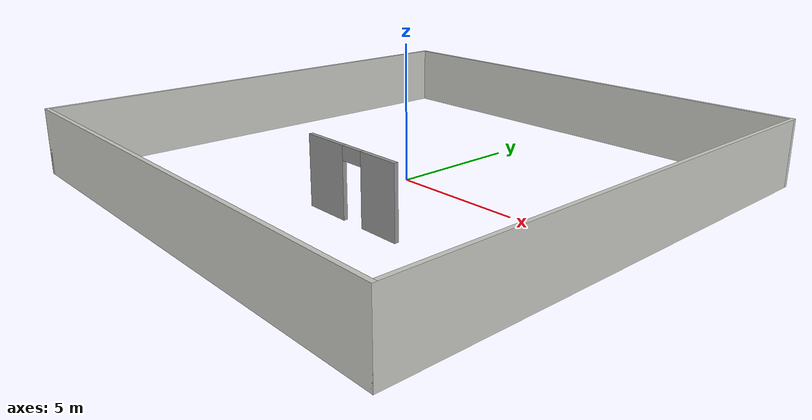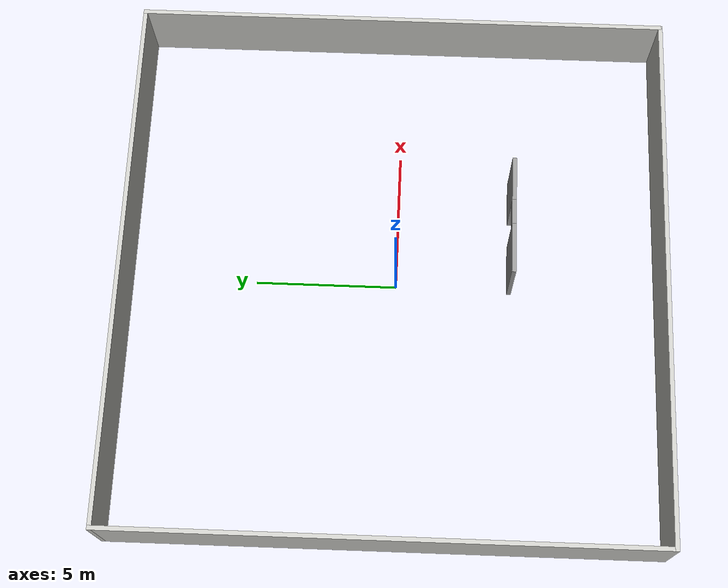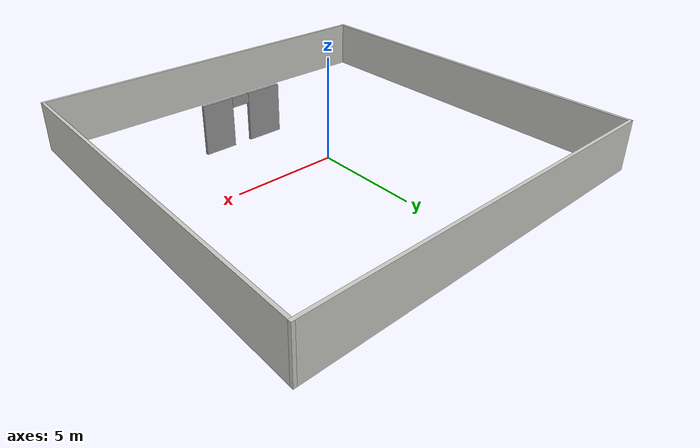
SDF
<?xml version='1.0'?>
<sdf version='1.6'>
  <model name='ttb_map'>
    <pose frame=''>0.099464 0.094566 0 0 -0 0</pose>
    <link name='Wall_19'>
      <collision name='Wall_19_Collision'>
        <geometry>
          <box>
            <size>19 0.15 2.5</size>
          </box>
        </geometry>
        <pose frame=''>0 0 1.25 0 -0 0</pose>
      </collision>
      <visual name='Wall_19_Visual'>
        <pose frame=''>0 0 1.25 0 -0 0</pose>
        <geometry>
          <box>
            <size>19 0.15 2.5</size>
          </box>
        </geometry>
        <material>
          <script>
            <uri>file://media/materials/scripts/gazebo.material</uri>
            <name>Gazebo/CeilingTiled</name>
          </script>
          <ambient>1 1 1 1</ambient>
        </material>
      </visual>
      <pose frame=''>-9.425 0 0 0 0 -1.5708</pose>
    </link>
    <link name='Wall_20'>
      <collision name='Wall_20_Collision'>
        <geometry>
          <box>
            <size>19 0.15 2.5</size>
          </box>
        </geometry>
        <pose frame=''>0 0 1.25 0 -0 0</pose>
      </collision>
      <visual name='Wall_20_Visual'>
        <pose frame=''>0 0 1.25 0 -0 0</pose>
        <geometry>
          <box>
            <size>19 0.15 2.5</size>
          </box>
        </geometry>
        <material>
          <script>
            <uri>file://media/materials/scripts/gazebo.material</uri>
            <name>Gazebo/CeilingTiled</name>
          </script>
          <ambient>1 1 1 1</ambient>
        </material>
      </visual>
      <pose frame=''>0 -9.425 0 0 -0 0</pose>
    </link>
    <link name='Wall_21'>
      <collision name='Wall_21_Collision'>
        <geometry>
          <box>
            <size>19 0.15 2.5</size>
          </box>
        </geometry>
        <pose frame=''>0 0 1.25 0 -0 0</pose>
      </collision>
      <visual name='Wall_21_Visual'>
        <pose frame=''>0 0 1.25 0 -0 0</pose>
        <geometry>
          <box>
            <size>19 0.15 2.5</size>
          </box>
        </geometry>
        <material>
          <script>
            <uri>file://media/materials/scripts/gazebo.material</uri>
            <name>Gazebo/CeilingTiled</name>
          </script>
          <ambient>1 1 1 1</ambient>
        </material>
      </visual>
      <pose frame=''>9.425 0 0 0 -0 1.5708</pose>
    </link>
    <link name='Wall_22'>
      <collision name='Wall_22_Collision'>
        <geometry>
          <box>
            <size>19 0.15 2.5</size>
          </box>
        </geometry>
        <pose frame=''>0 0 1.25 0 -0 0</pose>
      </collision>
      <visual name='Wall_22_Visual'>
        <pose frame=''>0 0 1.25 0 -0 0</pose>
        <geometry>
          <box>
            <size>19 0.15 2.5</size>
          </box>
        </geometry>
        <material>
          <script>
            <uri>file://media/materials/scripts/gazebo.material</uri>
            <name>Gazebo/CeilingTiled</name>
          </script>
          <ambient>1 1 1 1</ambient>
        </material>
      </visual>
      <pose frame=''>0 9.425 0 0 -0 3.14159</pose>
    </link>
    <link name='Wall_24'>
      <pose frame=''>1.90179 -4.14941 0 0 -0 0</pose>
      <visual name='Wall_24_Visual_0'>
        <pose frame=''>-1.23686 0 1.25 0 -0 0</pose>
        <geometry>
          <box>
            <size>1.77628 0.15 2.5</size>
          </box>
        </geometry>
        <material>
          <script>
            <uri>file://media/materials/scripts/gazebo.material</uri>
            <name>Gazebo/Grey</name>
          </script>
          <ambient>1 1 1 1</ambient>
        </material>
      </visual>
      <collision name='Wall_24_Collision_0'>
        <geometry>
          <box>
            <size>1.77628 0.15 2.5</size>
          </box>
        </geometry>
        <pose frame=''>-1.23686 0 1.25 0 -0 0</pose>
      </collision>
      <visual name='Wall_24_Visual_1'>
        <pose frame=''>1.33814 0 1.25 0 -0 0</pose>
        <geometry>
          <box>
            <size>1.57372 0.15 2.5</size>
          </box>
        </geometry>
        <material>
          <script>
            <uri>file://media/materials/scripts/gazebo.material</uri>
            <name>Gazebo/Grey</name>
          </script>
          <ambient>1 1 1 1</ambient>
        </material>
      </visual>
      <collision name='Wall_24_Collision_1'>
        <geometry>
          <box>
            <size>1.57372 0.15 2.5</size>
          </box>
        </geometry>
        <pose frame=''>1.33814 0 1.25 0 -0 0</pose>
      </collision>
      <visual name='Wall_24_Visual_2'>
        <pose frame=''>0.101278 0 2.25 0 -0 0</pose>
        <geometry>
          <box>
            <size>0.9 0.15 0.5</size>
          </box>
        </geometry>
        <material>
          <script>
            <uri>file://media/materials/scripts/gazebo.material</uri>
            <name>Gazebo/Grey</name>
          </script>
          <ambient>1 1 1 1</ambient>
        </material>
      </visual>
      <collision name='Wall_24_Collision_2'>
        <geometry>
          <box>
            <size>0.9 0.15 0.5</size>
          </box>
        </geometry>
        <pose frame=''>0.101278 0 2.25 0 -0 0</pose>
      </collision>
    </link>
    <static>1</static>
  </model>
</sdf>
